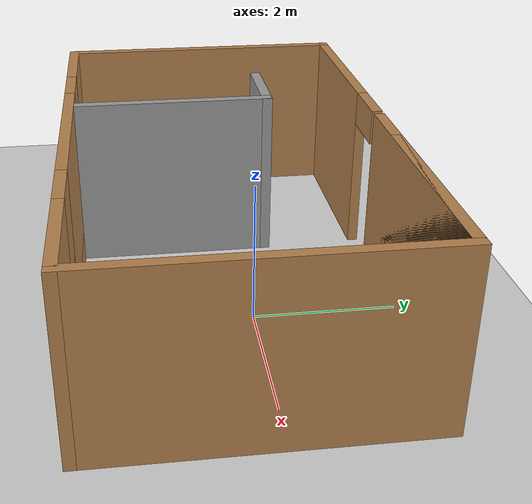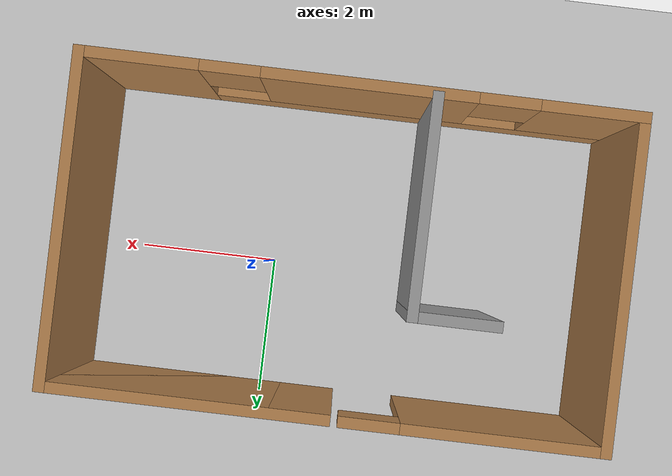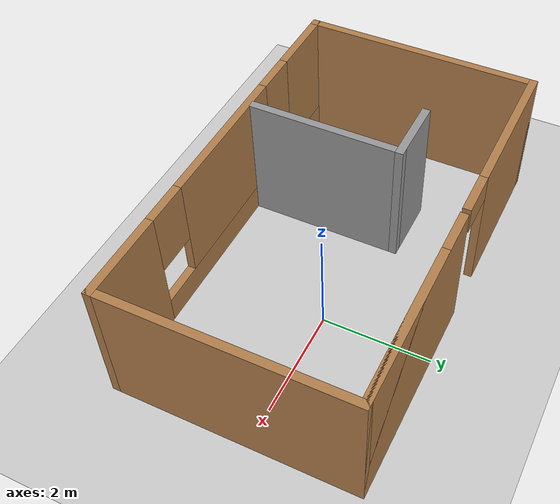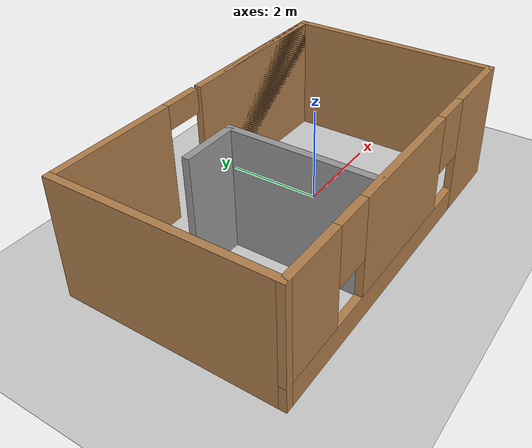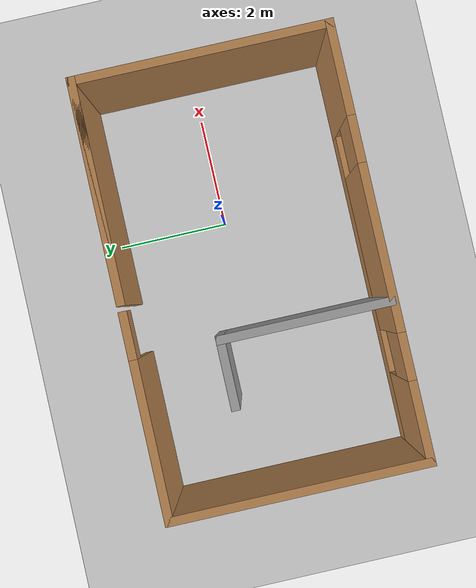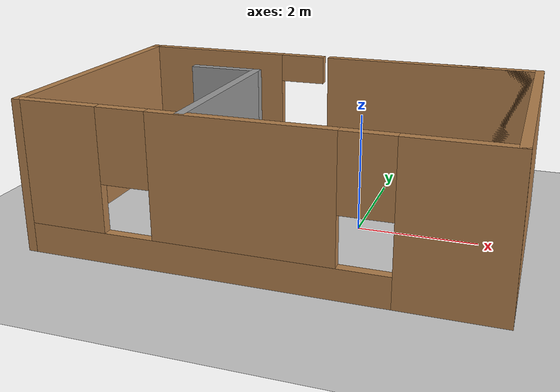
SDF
<sdf version='1.4'>
  <world name='default'>
    <!-- A global light source -->
    <include>
      <uri>model://sun</uri>
    </include>

    <!-- A ground plane -->
    <include>
      <uri>model://ground_plane</uri>
    </include>

    <physics type="ode">
      <real_time_update_rate>1000.0</real_time_update_rate>
      <max_step_size>0.001</max_step_size>
      <real_time_factor>1</real_time_factor>
      <ode>
        <solver>
          <type>quick</type>
          <iters>150</iters>
          <precon_iters>0</precon_iters>
          <sor>1.400000</sor>
          <use_dynamic_moi_rescaling>1</use_dynamic_moi_rescaling>
        </solver>
        <constraints>
          <cfm>0.00001</cfm>
          <erp>0.2</erp>
          <contact_max_correcting_vel>2000.000000</contact_max_correcting_vel>
          <contact_surface_layer>0.01000</contact_surface_layer>
        </constraints>
      </ode>
    </physics>

    <!-- Load world -->
    <include>
      <uri>model://pfm</uri>
    </include>

    <scene>
      <ambient>0.4 0.4 0.4 1</ambient>
      <background>0.7 0.7 0.7 1</background>
      <shadows>true</shadows>
    </scene>

    <gui fullscreen='0'>
      <camera name='user_camera'>
        <pose>0.8 0.0 12.0 0 1.5708 0</pose>
        <view_controller>orbit</view_controller>
      </camera>
    </gui>
  </world>
</sdf>

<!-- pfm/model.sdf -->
<sdf version='1.6'>
  <model name='pfm'>
    <pose frame=''>-1.02625 -0.250051 0 0 -0 0</pose>
    <link name='Wall_10'>
      <collision name='Wall_10_Collision'>
        <geometry>
          <box>
            <size>3 0.15 2.5</size>
          </box>
        </geometry>
        <pose frame=''>0 0 1.25 0 -0 0</pose>
      </collision>
      <visual name='Wall_10_Visual'>
        <pose frame=''>0 0 1.25 0 -0 0</pose>
        <geometry>
          <box>
            <size>3 0.15 2.5</size>
          </box>
        </geometry>
        <material>
          <script>
            <uri>file://media/materials/scripts/gazebo.material</uri>
            <name>Gazebo/Grey</name>
          </script>
          <ambient>1 1 1 1</ambient>
        </material>
      </visual>
      <pose frame=''>-0.99345 -0.702193 0 0 -0 1.5708</pose>
    </link>
    <link name='Wall_11'>
      <collision name='Wall_11_Collision'>
        <geometry>
          <box>
            <size>1.25 0.15 2.5</size>
          </box>
        </geometry>
        <pose frame=''>0 0 1.25 0 -0 0</pose>
      </collision>
      <visual name='Wall_11_Visual'>
        <pose frame=''>0 0 1.25 0 -0 0</pose>
        <geometry>
          <box>
            <size>1.25 0.15 2.5</size>
          </box>
        </geometry>
        <material>
          <script>
            <uri>file://media/materials/scripts/gazebo.material</uri>
            <name>Gazebo/Grey</name>
          </script>
          <ambient>1 1 1 1</ambient>
        </material>
      </visual>
      <pose frame=''>-1.54345 0.722807 0 0 -0 3.14159</pose>
    </link>
    <link name='Wall_4'>
      <collision name='Wall_4_Collision'>
        <geometry>
          <box>
            <size>4.5 0.15 2.5</size>
          </box>
        </geometry>
        <pose frame=''>0 0 1.25 0 -0 0</pose>
      </collision>
      <visual name='Wall_4_Visual'>
        <pose frame=''>0 0 1.25 0 -0 0</pose>
        <geometry>
          <box>
            <size>4.5 0.15 2.5</size>
          </box>
        </geometry>
        <material>
          <script>
            <uri>file://media/materials/scripts/gazebo.material</uri>
            <name>Gazebo/Wood</name>
          </script>
          <ambient>1 1 1 1</ambient>
        </material>
      </visual>
      <pose frame=''>3.675 0 0 0 0 -1.5708</pose>
    </link>
    <link name='Wall_5'>
      <pose frame=''>0 -2.175 0 0 -0 3.14159</pose>
      <visual name='Wall_5_Visual_0'>
        <pose frame=''>-2.93354 0 1.25 0 -0 0</pose>
        <geometry>
          <box>
            <size>1.63293 0.15 2.5</size>
          </box>
        </geometry>
        <material>
          <script>
            <uri>file://media/materials/scripts/gazebo.material</uri>
            <name>Gazebo/Wood</name>
          </script>
          <ambient>1 1 1 1</ambient>
        </material>
      </visual>
      <collision name='Wall_5_Collision_0'>
        <geometry>
          <box>
            <size>1.63293 0.15 2.5</size>
          </box>
        </geometry>
        <pose frame=''>-2.93354 0 1.25 0 -0 0</pose>
      </collision>
      <visual name='Wall_5_Visual_1'>
        <pose frame=''>0.816463 0 0.25 0 -0 0</pose>
        <geometry>
          <box>
            <size>5.86707 0.15 0.5</size>
          </box>
        </geometry>
        <material>
          <script>
            <uri>file://media/materials/scripts/gazebo.material</uri>
            <name>Gazebo/Wood</name>
          </script>
          <ambient>1 1 1 1</ambient>
        </material>
      </visual>
      <collision name='Wall_5_Collision_1'>
        <geometry>
          <box>
            <size>5.86707 0.15 0.5</size>
          </box>
        </geometry>
        <pose frame=''>0.816463 0 0.25 0 -0 0</pose>
      </collision>
      <visual name='Wall_5_Visual_2'>
        <pose frame=''>0.103428 0 1.5 0 -0 0</pose>
        <geometry>
          <box>
            <size>2.841 0.15 2</size>
          </box>
        </geometry>
        <material>
          <script>
            <uri>file://media/materials/scripts/gazebo.material</uri>
            <name>Gazebo/Wood</name>
          </script>
          <ambient>1 1 1 1</ambient>
        </material>
      </visual>
      <collision name='Wall_5_Collision_2'>
        <geometry>
          <box>
            <size>2.841 0.15 2</size>
          </box>
        </geometry>
        <pose frame=''>0.103428 0 1.5 0 -0 0</pose>
      </collision>
      <visual name='Wall_5_Visual_3'>
        <pose frame=''>3.03696 0 1.5 0 -0 0</pose>
        <geometry>
          <box>
            <size>1.42607 0.15 2</size>
          </box>
        </geometry>
        <material>
          <script>
            <uri>file://media/materials/scripts/gazebo.material</uri>
            <name>Gazebo/Wood</name>
          </script>
          <ambient>1 1 1 1</ambient>
        </material>
      </visual>
      <collision name='Wall_5_Collision_3'>
        <geometry>
          <box>
            <size>1.42607 0.15 2</size>
          </box>
        </geometry>
        <pose frame=''>3.03696 0 1.5 0 -0 0</pose>
      </collision>
      <visual name='Wall_5_Visual_4'>
        <pose frame=''>-1.71707 0 1.9 0 -0 0</pose>
        <geometry>
          <box>
            <size>0.8 0.15 1.2</size>
          </box>
        </geometry>
        <material>
          <script>
            <uri>file://media/materials/scripts/gazebo.material</uri>
            <name>Gazebo/Wood</name>
          </script>
          <ambient>1 1 1 1</ambient>
        </material>
      </visual>
      <collision name='Wall_5_Collision_4'>
        <geometry>
          <box>
            <size>0.8 0.15 1.2</size>
          </box>
        </geometry>
        <pose frame=''>-1.71707 0 1.9 0 -0 0</pose>
      </collision>
      <visual name='Wall_5_Visual_5'>
        <pose frame=''>1.92393 0 1.9 0 -0 0</pose>
        <geometry>
          <box>
            <size>0.8 0.15 1.2</size>
          </box>
        </geometry>
        <material>
          <script>
            <uri>file://media/materials/scripts/gazebo.material</uri>
            <name>Gazebo/Wood</name>
          </script>
          <ambient>1 1 1 1</ambient>
        </material>
      </visual>
      <collision name='Wall_5_Collision_5'>
        <geometry>
          <box>
            <size>0.8 0.15 1.2</size>
          </box>
        </geometry>
        <pose frame=''>1.92393 0 1.9 0 -0 0</pose>
      </collision>
    </link>
    <link name='Wall_6'>
      <collision name='Wall_6_Collision'>
        <geometry>
          <box>
            <size>4.5 0.15 2.5</size>
          </box>
        </geometry>
        <pose frame=''>0 0 1.25 0 -0 0</pose>
      </collision>
      <visual name='Wall_6_Visual'>
        <pose frame=''>0 0 1.25 0 -0 0</pose>
        <geometry>
          <box>
            <size>4.5 0.15 2.5</size>
          </box>
        </geometry>
        <material>
          <script>
            <uri>file://media/materials/scripts/gazebo.material</uri>
            <name>Gazebo/Wood</name>
          </script>
          <ambient>1 1 1 1</ambient>
        </material>
      </visual>
      <pose frame=''>-3.675 0 0 0 -0 1.5708</pose>
    </link>
    <link name='Wall_7'>
      <pose frame=''>0 2.175 0 0 -0 0</pose>
      <visual name='Wall_7_Visual_0'>
        <pose frame=''>-2.37422 0 1.25 0 -0 0</pose>
        <geometry>
          <box>
            <size>2.75156 0.15 2.5</size>
          </box>
        </geometry>
        <material>
          <script>
            <uri>file://media/materials/scripts/gazebo.material</uri>
            <name>Gazebo/Wood</name>
          </script>
          <ambient>1 1 1 1</ambient>
        </material>
      </visual>
      <collision name='Wall_7_Collision_0'>
        <geometry>
          <box>
            <size>2.75156 0.15 2.5</size>
          </box>
        </geometry>
        <pose frame=''>-2.37422 0 1.25 0 -0 0</pose>
      </collision>
      <visual name='Wall_7_Visual_1'>
        <pose frame=''>1.82578 0 1.25 0 -0 0</pose>
        <geometry>
          <box>
            <size>3.84844 0.15 2.5</size>
          </box>
        </geometry>
        <material>
          <script>
            <uri>file://media/materials/scripts/gazebo.material</uri>
            <name>Gazebo/Wood</name>
          </script>
          <ambient>1 1 1 1</ambient>
        </material>
      </visual>
      <collision name='Wall_7_Collision_1'>
        <geometry>
          <box>
            <size>3.84844 0.15 2.5</size>
          </box>
        </geometry>
        <pose frame=''>1.82578 0 1.25 0 -0 0</pose>
      </collision>
      <visual name='Wall_7_Visual_2'>
        <pose frame=''>2.23034 0 1.25 0 -0 0</pose>
        <geometry>
          <box>
            <size>3.03933 0.15 2.5</size>
          </box>
        </geometry>
        <material>
          <script>
            <uri>file://media/materials/scripts/gazebo.material</uri>
            <name>Gazebo/Wood</name>
          </script>
          <ambient>1 1 1 1</ambient>
        </material>
      </visual>
      <collision name='Wall_7_Collision_2'>
        <geometry>
          <box>
            <size>3.03933 0.15 2.5</size>
          </box>
        </geometry>
        <pose frame=''>2.23034 0 1.25 0 -0 0</pose>
      </collision>
      <visual name='Wall_7_Visual_3'>
        <pose frame=''>-0.593883 0 2.25 0 -0 0</pose>
        <geometry>
          <box>
            <size>0.809112 0.15 0.5</size>
          </box>
        </geometry>
        <material>
          <script>
            <uri>file://media/materials/scripts/gazebo.material</uri>
            <name>Gazebo/Wood</name>
          </script>
          <ambient>1 1 1 1</ambient>
        </material>
      </visual>
      <collision name='Wall_7_Collision_3'>
        <geometry>
          <box>
            <size>0.809112 0.15 0.5</size>
          </box>
        </geometry>
        <pose frame=''>-0.593883 0 2.25 0 -0 0</pose>
      </collision>
    </link>
    <static>1</static>
  </model>
</sdf>
